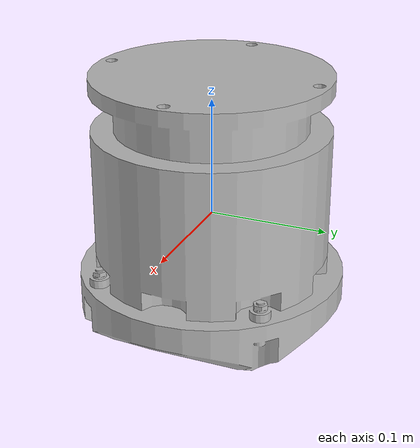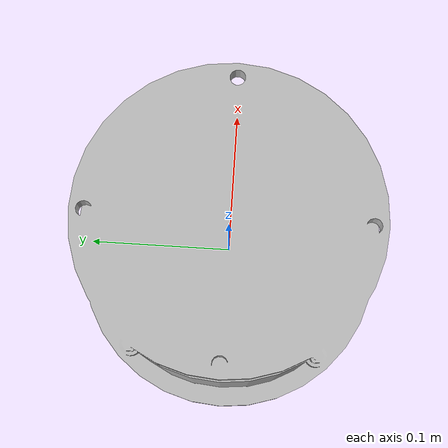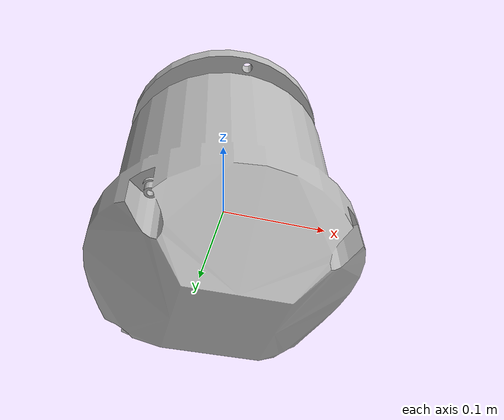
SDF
<?xml version="1.0"?>
<!-- Teledyne Workhorse Navigator Doppler Velocity Logger (DVL) utilizing the
     WHOI DSL Gazebo environment DVL plugin -->
<sdf version="1.6">
  <model name="teledyne_whn_dsl">
    <link name="whn_base_link">
      <pose>0 0 0 0 0 0</pose>
      <inertial>
        <pose>0 0 0 0 0 0</pose>
        <mass>15.8</mass>
        <inertia>
          <ixx>0.1287917645</ixx>
          <ixy>0</ixy>
          <ixz>0</ixz>
          <iyy>0.1287917645</iyy>
          <iyz>0</iyz>
          <izz>0.100162204</izz>
        </inertia>
      </inertial>
      <velocity_decay/>
      <gravity>0</gravity>

      <sensor
        name="teledyne_whn_dsl" type="custom"
        gz:type="dvl">
        <pose>0 0 0 0 0 0</pose>
        <always_on>1</always_on>
        <update_rate>7</update_rate>
        <topic>/dvl/velocity</topic>
        <gz:dvl>
          <type>phased_array</type>
          <arrangement degrees="true">
            <beam id="1">
              <aperture>4</aperture>
              <rotation>-135</rotation>
              <tilt>30</tilt>
            </beam>
            <beam>
              <aperture>4</aperture>
              <rotation>135</rotation>
              <tilt>30</tilt>
            </beam>
            <beam>
              <aperture>4</aperture>
              <rotation>45</rotation>
              <tilt>30</tilt>
            </beam>
            <beam>
              <aperture>4</aperture>
              <rotation>-45</rotation>
              <tilt>30</tilt>
            </beam>
          </arrangement>
          <tracking>
            <water_mass_mode>
              <when>best</when>
              <water_velocity>
                <x>0.</x>
                <y>0.</y>
                <z>0.</z>
              </water_velocity>
              <boundaries>
                <near>10.</near>
                <far>100.</far>
              </boundaries>
              <bins>10</bins>
              <noise type="gaussian">
                <stddev>0.0075</stddev>
              </noise>
              <visualize>true</visualize>
            </water_mass_mode>
            <bottom_mode>
              <when>best</when>
              <noise type="gaussian">
                <stddev>0.005</stddev>
              </noise>
              <visualize>true</visualize>
            </bottom_mode>
          </tracking>
          <maximum_range>90.</maximum_range>
          <minimum_range>0.7</minimum_range>
          <!-- ENU to FSD -->
          <reference_frame>0 0 0 3.14 0 -1.57</reference_frame>
        </gz:dvl>
      </sensor>

      <self_collide>0</self_collide>
      <enable_wind>0</enable_wind>
      <kinematic>0</kinematic>
      <visual name="whn_base_link_visual">
        <pose>0 0 0 0 3.141592653589793 0</pose>
        <geometry>
          <mesh>
            <scale>1 1 1</scale>
            <uri>model://meshes/teledyne_whn/WorkhorseNavigator.dae</uri>
          </mesh>
        </geometry>
        <transparency>0</transparency>
        <cast_shadows>1</cast_shadows>
      </visual>
      <collision name="whn_base_link_collision">
        <laser_retro>0</laser_retro>
        <max_contacts>10</max_contacts>
        <pose>0 0 0 0 0 0</pose>
        <geometry>
          <cylinder>
            <radius>0.1126</radius>
            <length>0.2445</length>
          </cylinder>
        </geometry>
      </collision>
    </link>
    <static>1</static>
    <allow_auto_disable>1</allow_auto_disable>

    <plugin
      filename="DVLBridge"
      name="dave_ros_gz_plugins::DVLBridge">
      <topic>/dvl/velocity</topic>
    </plugin>

  </model>
</sdf>
